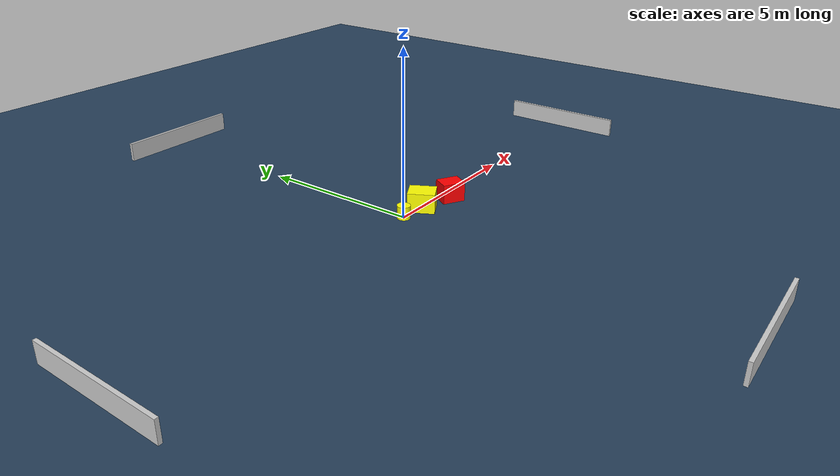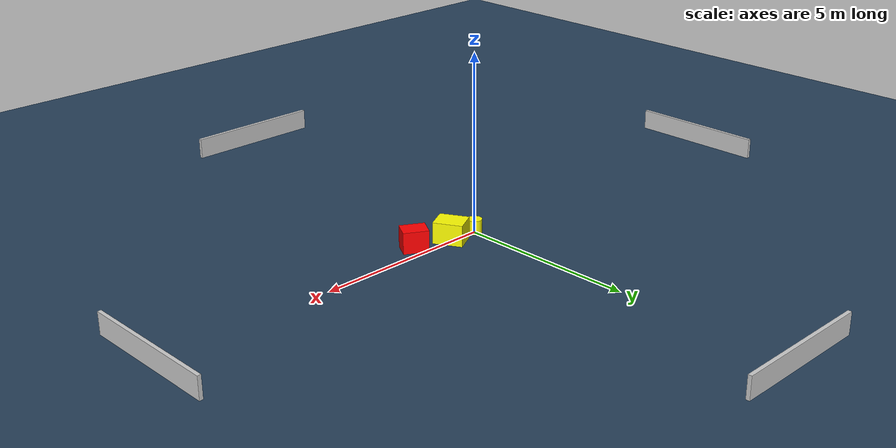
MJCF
<?xml version="1.0" ?>
<mujoco model="generated_environment">
  <option timestep="0.01" integrator="RK4" cone="elliptic"/>
  <default>
    <geom density="1"/>
  </default>
  <asset>
    <texture builtin="gradient" height="3072" name="skybox" rgb1="0.3 0.5 0.7" rgb2="0 0 0" type="skybox" width="512"/>
    <texture builtin="checker" height="300" name="groundplane" rgb1="0.2 0.3 0.4" rgb2="0.1 0.2 0.3" type="2d" width="300"/>
    <material name="groundplane" reflectance="0.2" texrepeat="5 5" texture="groundplane"/>
  </asset>
  <worldbody>
    <light dir="0 0 -1" directional="true" pos="0 0 1.5"/>
    <geom condim="3" friction="0.5 0.005 0.001" material="groundplane" name="floor" pos="0 0 0" size="0 0 0.05" type="plane"/>
    <body name="walls">
      <geom name="wall_1" condim="4" pos="-10.0 0.0 0.3" rgba="0.800000011920929 0.800000011920929 0.800000011920929 1.0" size="0.05 2.0 0.3" type="box"/>
      <geom name="wall_2" condim="4" pos="10.0 0.0 0.3" rgba="0.800000011920929 0.800000011920929 0.800000011920929 1.0" size="0.05 2.0 0.3" type="box"/>
      <geom name="wall_3" condim="4" pos="0.0 -10.0 0.3" rgba="0.800000011920929 0.800000011920929 0.800000011920929 1.0" size="2.0 0.05 0.3" type="box"/>
      <geom name="wall_4" condim="4" pos="0.0 10.0 0.3" rgba="0.800000011920929 0.800000011920929 0.800000011920929 1.0" size="2.0 0.05 0.3" type="box"/>
    </body>
    <body name="robot">
      <joint name="joint_x" type="slide" pos="0 0 0" axis="1 0 0"/>
      <joint name="joint_y" type="slide" pos="0 0 0" axis="0 1 0"/>
      <geom name="robot" type="cylinder" pos="0.0 0.0 0.2" size="0.2 0.2 0.0" mass="5.0" friction="1.0 0.005 0.0001" condim="4" rgba="1.0 1.0 0.0 1.0"/>
    </body>
    <body name="obstacle_1_movable">
      <geom name="obstacle_1_movable" condim="4" pos="0.8128941640171911 -0.06882289988976802 0.3" euler="0 0 298.5312336077415" friction="0.0 0.005 0.001" rgba="1.0 1.0 0.0 1.0" size="0.40821913661336284 0.3265931310344702 0.3" type="box" mass="0.1"/>
      <joint type="free"/>
    </body>
    <body name="obstacle_2_static">
      <geom name="obstacle_2_static" condim="4" pos="1.8694315304649856 -0.361219623740545 0.3" euler="0 0 150.02027234909636" friction="0.0 0.005 0.001" rgba="1.0 0.0 0.0 1.0" size="0.34813987150005066 0.2711084405257499 0.3" type="box"/>
    </body>
  </worldbody>
  <actuator>
    <motor name="actuator_x" joint="joint_x" gear="1" ctrlrange="-1 1"/>
    <motor name="actuator_y" joint="joint_y" gear="1" ctrlrange="-1 1"/>
  </actuator>
</mujoco>
